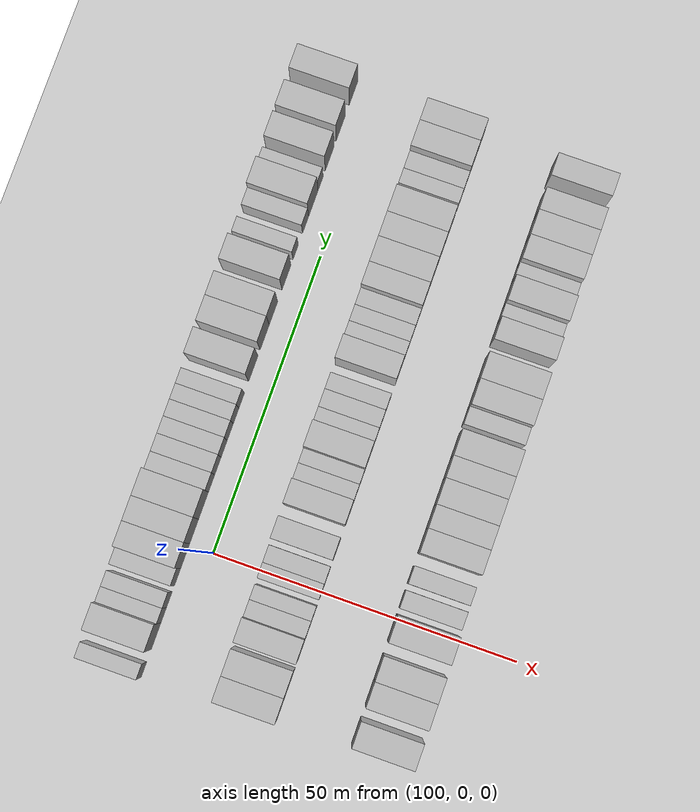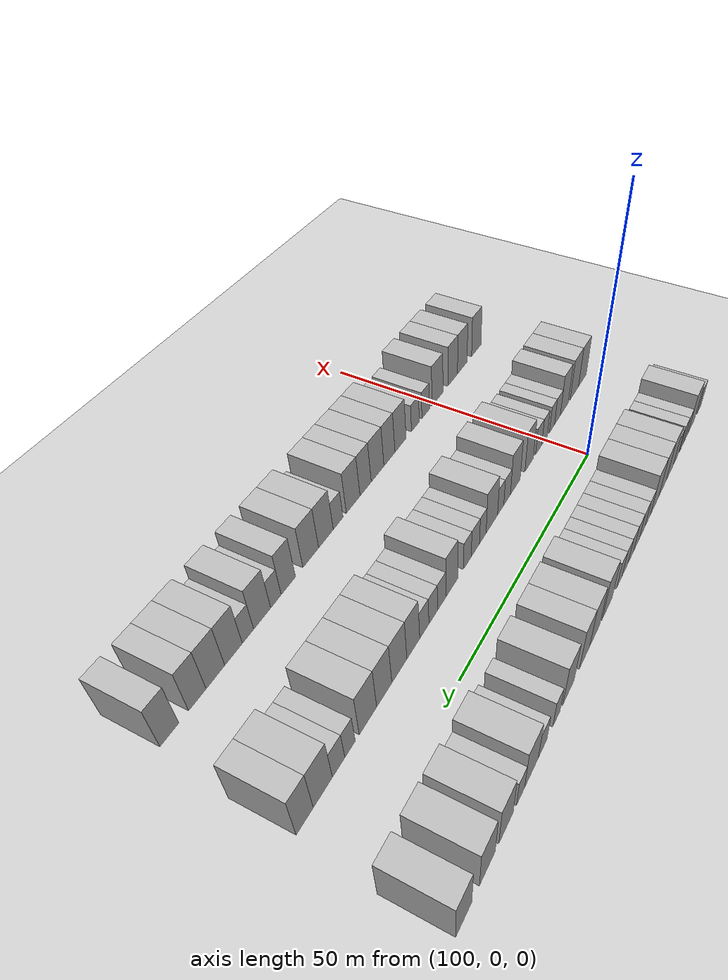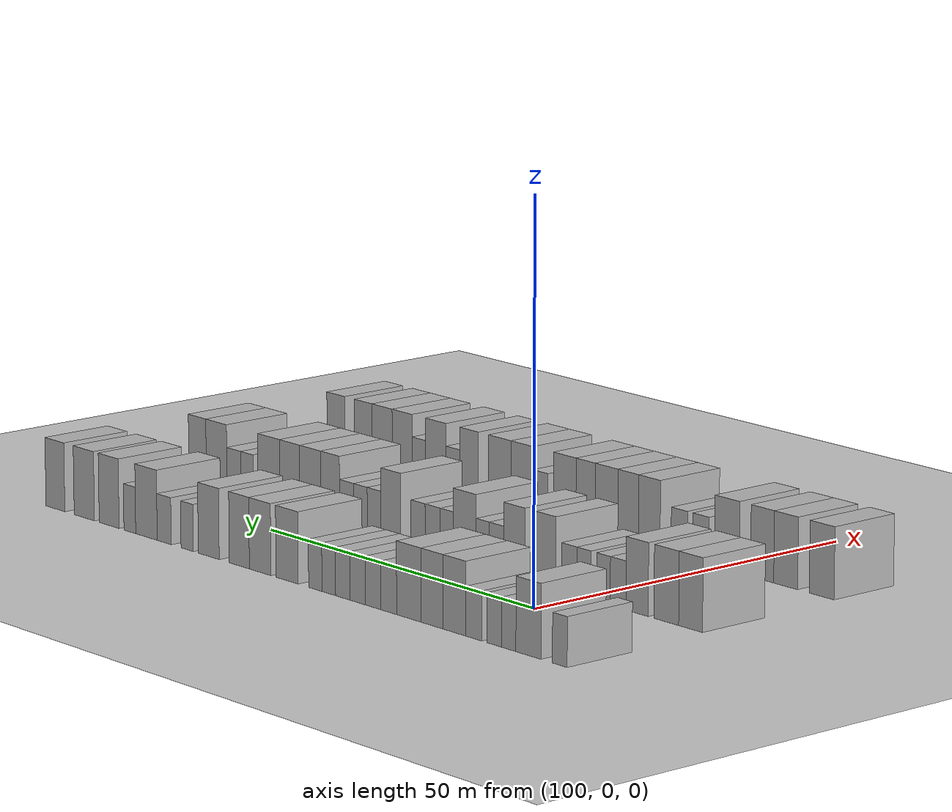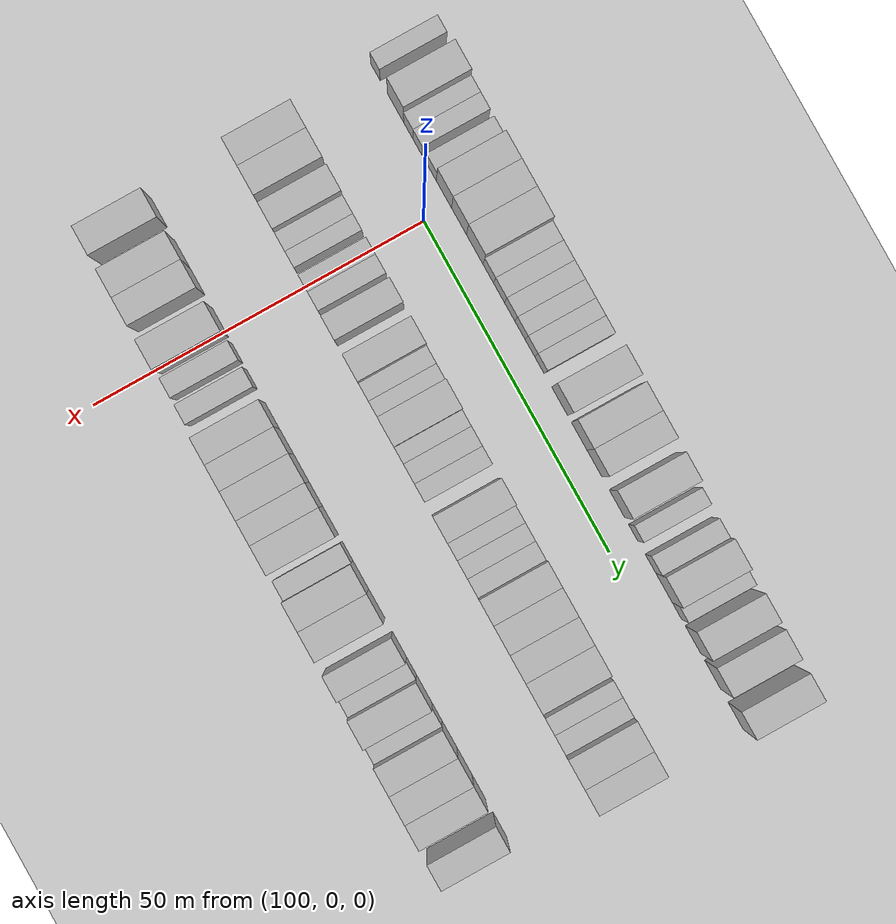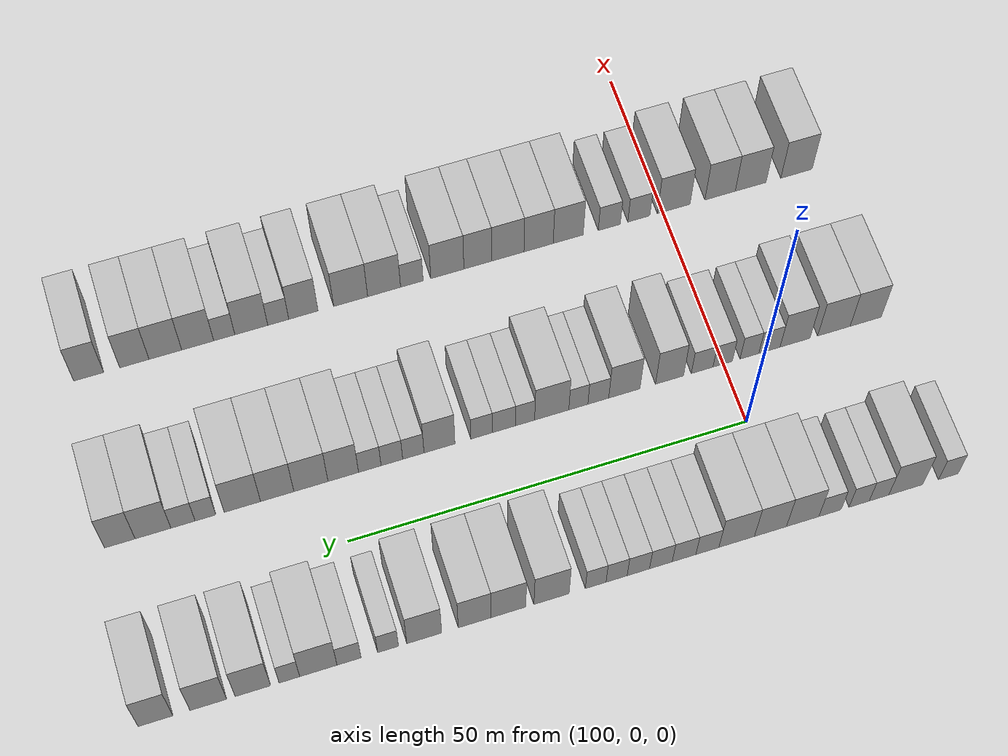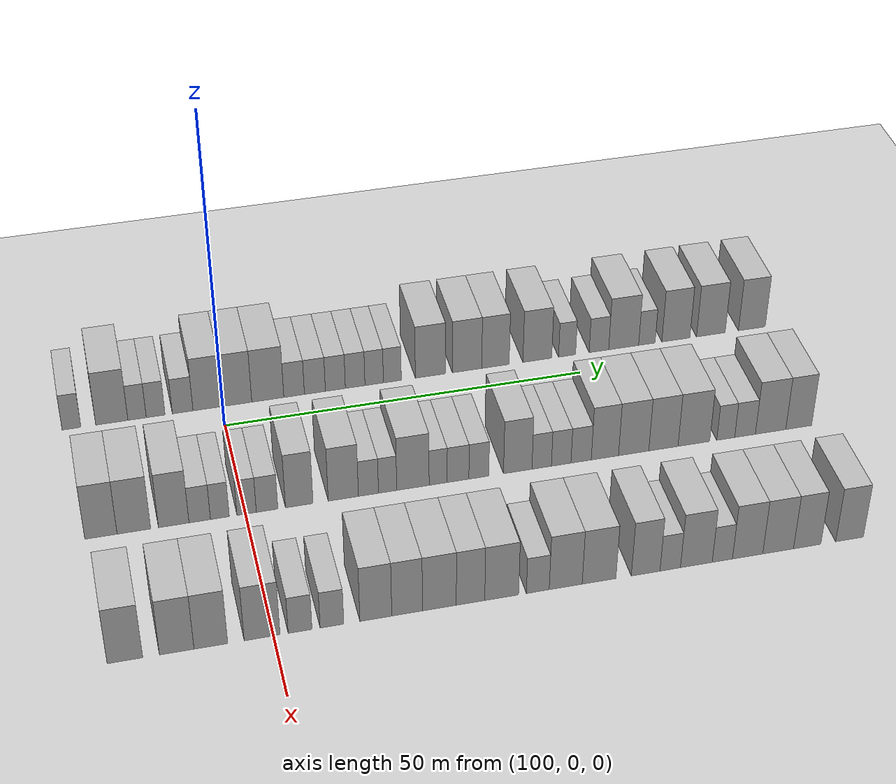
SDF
<sdf version="1.6">
 <world name="default">
  <include>
   <name>ground_plane_2</name>
   <uri>model://HANNAS_ground_plane</uri>
   <pose>100 0 0  0 0 0</pose>
  </include>
  <model name="building_658">
   <static>1</static>
   <pose>91.0000 -20.3699 0 0.000000 0.000000 0.000000</pose>
   <link name="link">
    <pose>0 0 3.00 0 0 0</pose>
    <collision name="collision"><geometry><box><size>10.0000 2.5339 6.0000</size></box></geometry></collision>
    <visual name="visual">
     <cast_shadows>0</cast_shadows>
     <geometry><box><size>10.0000 2.5339 6.0000</size></box></geometry>
     <material>
      <script>
       <uri>model://HANNAS_wall/materials/scripts</uri>
       <uri>model://HANNAS_wall/materials/textures</uri>
       <name>vrc/HANNAS_wall</name>
      </script>
     </material>
    </visual>
   </link>
  </model>
  <model name="building_659">
   <static>1</static>
   <pose>91.0000 -14.9232 0 0.000000 0.000000 0.000000</pose>
   <link name="link">
    <pose>0 0 4.50 0 0 0</pose>
    <collision name="collision"><geometry><box><size>10.0000 4.3595 9.0000</size></box></geometry></collision>
    <visual name="visual">
     <cast_shadows>0</cast_shadows>
     <geometry><box><size>10.0000 4.3595 9.0000</size></box></geometry>
     <material>
      <script>
       <uri>model://HANNAS_wall/materials/scripts</uri>
       <uri>model://HANNAS_wall/materials/textures</uri>
       <name>vrc/HANNAS_wall</name>
      </script>
     </material>
    </visual>
   </link>
  </model>
  <model name="building_660">
   <static>1</static>
   <pose>91.0000 -11.4976 0 0.000000 0.000000 0.000000</pose>
   <link name="link">
    <pose>0 0 3.00 0 0 0</pose>
    <collision name="collision"><geometry><box><size>10.0000 2.4918 6.0000</size></box></geometry></collision>
    <visual name="visual">
     <cast_shadows>0</cast_shadows>
     <geometry><box><size>10.0000 2.4918 6.0000</size></box></geometry>
     <material>
      <script>
       <uri>model://HANNAS_wall/materials/scripts</uri>
       <uri>model://HANNAS_wall/materials/textures</uri>
       <name>vrc/HANNAS_wall</name>
      </script>
     </material>
    </visual>
   </link>
  </model>
  <model name="building_661">
   <static>1</static>
   <pose>91.0000 -8.9685 0 0.000000 0.000000 0.000000</pose>
   <link name="link">
    <pose>0 0 3.00 0 0 0</pose>
    <collision name="collision"><geometry><box><size>10.0000 2.5663 6.0000</size></box></geometry></collision>
    <visual name="visual">
     <cast_shadows>0</cast_shadows>
     <geometry><box><size>10.0000 2.5663 6.0000</size></box></geometry>
     <material>
      <script>
       <uri>model://HANNAS_wall/materials/scripts</uri>
       <uri>model://HANNAS_wall/materials/textures</uri>
       <name>vrc/HANNAS_wall</name>
      </script>
     </material>
    </visual>
   </link>
  </model>
  <model name="building_662">
   <static>1</static>
   <pose>91.0000 -5.2707 0 0.000000 0.000000 0.000000</pose>
   <link name="link">
    <pose>0 0 3.00 0 0 0</pose>
    <collision name="collision"><geometry><box><size>10.0000 2.8292 6.0000</size></box></geometry></collision>
    <visual name="visual">
     <cast_shadows>0</cast_shadows>
     <geometry><box><size>10.0000 2.8292 6.0000</size></box></geometry>
     <material>
      <script>
       <uri>model://HANNAS_wall/materials/scripts</uri>
       <uri>model://HANNAS_wall/materials/textures</uri>
       <name>vrc/HANNAS_wall</name>
      </script>
     </material>
    </visual>
   </link>
  </model>
  <model name="building_663">
   <static>1</static>
   <pose>91.0000 -1.8103 0 0.000000 0.000000 0.000000</pose>
   <link name="link">
    <pose>0 0 4.50 0 0 0</pose>
    <collision name="collision"><geometry><box><size>10.0000 4.0916 9.0000</size></box></geometry></collision>
    <visual name="visual">
     <cast_shadows>0</cast_shadows>
     <geometry><box><size>10.0000 4.0916 9.0000</size></box></geometry>
     <material>
      <script>
       <uri>model://HANNAS_wall/materials/scripts</uri>
       <uri>model://HANNAS_wall/materials/textures</uri>
       <name>vrc/HANNAS_wall</name>
      </script>
     </material>
    </visual>
   </link>
  </model>
  <model name="building_664">
   <static>1</static>
   <pose>91.0000 2.2497 0 0.000000 0.000000 0.000000</pose>
   <link name="link">
    <pose>0 0 4.50 0 0 0</pose>
    <collision name="collision"><geometry><box><size>10.0000 4.0285 9.0000</size></box></geometry></collision>
    <visual name="visual">
     <cast_shadows>0</cast_shadows>
     <geometry><box><size>10.0000 4.0285 9.0000</size></box></geometry>
     <material>
      <script>
       <uri>model://HANNAS_wall/materials/scripts</uri>
       <uri>model://HANNAS_wall/materials/textures</uri>
       <name>vrc/HANNAS_wall</name>
      </script>
     </material>
    </visual>
   </link>
  </model>
  <model name="building_665">
   <static>1</static>
   <pose>91.0000 6.4929 0 0.000000 0.000000 0.000000</pose>
   <link name="link">
    <pose>0 0 4.50 0 0 0</pose>
    <collision name="collision"><geometry><box><size>10.0000 4.4579 9.0000</size></box></geometry></collision>
    <visual name="visual">
     <cast_shadows>0</cast_shadows>
     <geometry><box><size>10.0000 4.4579 9.0000</size></box></geometry>
     <material>
      <script>
       <uri>model://HANNAS_wall/materials/scripts</uri>
       <uri>model://HANNAS_wall/materials/textures</uri>
       <name>vrc/HANNAS_wall</name>
      </script>
     </material>
    </visual>
   </link>
  </model>
  <model name="building_666">
   <static>1</static>
   <pose>91.0000 10.1592 0 0.000000 0.000000 0.000000</pose>
   <link name="link">
    <pose>0 0 3.00 0 0 0</pose>
    <collision name="collision"><geometry><box><size>10.0000 2.8749 6.0000</size></box></geometry></collision>
    <visual name="visual">
     <cast_shadows>0</cast_shadows>
     <geometry><box><size>10.0000 2.8749 6.0000</size></box></geometry>
     <material>
      <script>
       <uri>model://HANNAS_wall/materials/scripts</uri>
       <uri>model://HANNAS_wall/materials/textures</uri>
       <name>vrc/HANNAS_wall</name>
      </script>
     </material>
    </visual>
   </link>
  </model>
  <model name="building_667">
   <static>1</static>
   <pose>91.0000 13.0700 0 0.000000 0.000000 0.000000</pose>
   <link name="link">
    <pose>0 0 3.00 0 0 0</pose>
    <collision name="collision"><geometry><box><size>10.0000 2.9467 6.0000</size></box></geometry></collision>
    <visual name="visual">
     <cast_shadows>0</cast_shadows>
     <geometry><box><size>10.0000 2.9467 6.0000</size></box></geometry>
     <material>
      <script>
       <uri>model://HANNAS_wall/materials/scripts</uri>
       <uri>model://HANNAS_wall/materials/textures</uri>
       <name>vrc/HANNAS_wall</name>
      </script>
     </material>
    </visual>
   </link>
  </model>
  <model name="building_668">
   <static>1</static>
   <pose>91.0000 15.9498 0 0.000000 0.000000 0.000000</pose>
   <link name="link">
    <pose>0 0 3.00 0 0 0</pose>
    <collision name="collision"><geometry><box><size>10.0000 2.8129 6.0000</size></box></geometry></collision>
    <visual name="visual">
     <cast_shadows>0</cast_shadows>
     <geometry><box><size>10.0000 2.8129 6.0000</size></box></geometry>
     <material>
      <script>
       <uri>model://HANNAS_wall/materials/scripts</uri>
       <uri>model://HANNAS_wall/materials/textures</uri>
       <name>vrc/HANNAS_wall</name>
      </script>
     </material>
    </visual>
   </link>
  </model>
  <model name="building_669">
   <static>1</static>
   <pose>91.0000 18.7405 0 0.000000 0.000000 0.000000</pose>
   <link name="link">
    <pose>0 0 3.00 0 0 0</pose>
    <collision name="collision"><geometry><box><size>10.0000 2.7685 6.0000</size></box></geometry></collision>
    <visual name="visual">
     <cast_shadows>0</cast_shadows>
     <geometry><box><size>10.0000 2.7685 6.0000</size></box></geometry>
     <material>
      <script>
       <uri>model://HANNAS_wall/materials/scripts</uri>
       <uri>model://HANNAS_wall/materials/textures</uri>
       <name>vrc/HANNAS_wall</name>
      </script>
     </material>
    </visual>
   </link>
  </model>
  <model name="building_670">
   <static>1</static>
   <pose>91.0000 21.4288 0 0.000000 0.000000 0.000000</pose>
   <link name="link">
    <pose>0 0 3.00 0 0 0</pose>
    <collision name="collision"><geometry><box><size>10.0000 2.6081 6.0000</size></box></geometry></collision>
    <visual name="visual">
     <cast_shadows>0</cast_shadows>
     <geometry><box><size>10.0000 2.6081 6.0000</size></box></geometry>
     <material>
      <script>
       <uri>model://HANNAS_wall/materials/scripts</uri>
       <uri>model://HANNAS_wall/materials/textures</uri>
       <name>vrc/HANNAS_wall</name>
      </script>
     </material>
    </visual>
   </link>
  </model>
  <model name="building_671">
   <static>1</static>
   <pose>91.0000 24.0065 0 0.000000 0.000000 0.000000</pose>
   <link name="link">
    <pose>0 0 3.00 0 0 0</pose>
    <collision name="collision"><geometry><box><size>10.0000 2.5472 6.0000</size></box></geometry></collision>
    <visual name="visual">
     <cast_shadows>0</cast_shadows>
     <geometry><box><size>10.0000 2.5472 6.0000</size></box></geometry>
     <material>
      <script>
       <uri>model://HANNAS_wall/materials/scripts</uri>
       <uri>model://HANNAS_wall/materials/textures</uri>
       <name>vrc/HANNAS_wall</name>
      </script>
     </material>
    </visual>
   </link>
  </model>
  <model name="building_672">
   <static>1</static>
   <pose>91.0000 29.4325 0 0.000000 0.000000 0.000000</pose>
   <link name="link">
    <pose>0 0 4.50 0 0 0</pose>
    <collision name="collision"><geometry><box><size>10.0000 4.3049 9.0000</size></box></geometry></collision>
    <visual name="visual">
     <cast_shadows>0</cast_shadows>
     <geometry><box><size>10.0000 4.3049 9.0000</size></box></geometry>
     <material>
      <script>
       <uri>model://HANNAS_wall/materials/scripts</uri>
       <uri>model://HANNAS_wall/materials/textures</uri>
       <name>vrc/HANNAS_wall</name>
      </script>
     </material>
    </visual>
   </link>
  </model>
  <model name="building_673">
   <static>1</static>
   <pose>91.0000 34.6981 0 0.000000 0.000000 0.000000</pose>
   <link name="link">
    <pose>0 0 4.50 0 0 0</pose>
    <collision name="collision"><geometry><box><size>10.0000 4.2263 9.0000</size></box></geometry></collision>
    <visual name="visual">
     <cast_shadows>0</cast_shadows>
     <geometry><box><size>10.0000 4.2263 9.0000</size></box></geometry>
     <material>
      <script>
       <uri>model://HANNAS_wall/materials/scripts</uri>
       <uri>model://HANNAS_wall/materials/textures</uri>
       <name>vrc/HANNAS_wall</name>
      </script>
     </material>
    </visual>
   </link>
  </model>
  <model name="building_674">
   <static>1</static>
   <pose>91.0000 38.7994 0 0.000000 0.000000 0.000000</pose>
   <link name="link">
    <pose>0 0 4.50 0 0 0</pose>
    <collision name="collision"><geometry><box><size>10.0000 3.9763 9.0000</size></box></geometry></collision>
    <visual name="visual">
     <cast_shadows>0</cast_shadows>
     <geometry><box><size>10.0000 3.9763 9.0000</size></box></geometry>
     <material>
      <script>
       <uri>model://HANNAS_wall/materials/scripts</uri>
       <uri>model://HANNAS_wall/materials/textures</uri>
       <name>vrc/HANNAS_wall</name>
      </script>
     </material>
    </visual>
   </link>
  </model>
  <model name="building_675">
   <static>1</static>
   <pose>91.0000 44.8889 0 0.000000 0.000000 0.000000</pose>
   <link name="link">
    <pose>0 0 4.50 0 0 0</pose>
    <collision name="collision"><geometry><box><size>10.0000 4.2027 9.0000</size></box></geometry></collision>
    <visual name="visual">
     <cast_shadows>0</cast_shadows>
     <geometry><box><size>10.0000 4.2027 9.0000</size></box></geometry>
     <material>
      <script>
       <uri>model://HANNAS_wall/materials/scripts</uri>
       <uri>model://HANNAS_wall/materials/textures</uri>
       <name>vrc/HANNAS_wall</name>
      </script>
     </material>
    </visual>
   </link>
  </model>
  <model name="building_676">
   <static>1</static>
   <pose>91.0000 49.2400 0 0.000000 0.000000 0.000000</pose>
   <link name="link">
    <pose>0 0 3.00 0 0 0</pose>
    <collision name="collision"><geometry><box><size>10.0000 2.4996 6.0000</size></box></geometry></collision>
    <visual name="visual">
     <cast_shadows>0</cast_shadows>
     <geometry><box><size>10.0000 2.4996 6.0000</size></box></geometry>
     <material>
      <script>
       <uri>model://HANNAS_wall/materials/scripts</uri>
       <uri>model://HANNAS_wall/materials/textures</uri>
       <name>vrc/HANNAS_wall</name>
      </script>
     </material>
    </visual>
   </link>
  </model>
  <model name="building_677">
   <static>1</static>
   <pose>91.0000 53.9259 0 0.000000 0.000000 0.000000</pose>
   <link name="link">
    <pose>0 0 3.00 0 0 0</pose>
    <collision name="collision"><geometry><box><size>10.0000 2.8724 6.0000</size></box></geometry></collision>
    <visual name="visual">
     <cast_shadows>0</cast_shadows>
     <geometry><box><size>10.0000 2.8724 6.0000</size></box></geometry>
     <material>
      <script>
       <uri>model://HANNAS_wall/materials/scripts</uri>
       <uri>model://HANNAS_wall/materials/textures</uri>
       <name>vrc/HANNAS_wall</name>
      </script>
     </material>
    </visual>
   </link>
  </model>
  <model name="building_678">
   <static>1</static>
   <pose>91.0000 57.5828 0 0.000000 0.000000 0.000000</pose>
   <link name="link">
    <pose>0 0 4.50 0 0 0</pose>
    <collision name="collision"><geometry><box><size>10.0000 4.4414 9.0000</size></box></geometry></collision>
    <visual name="visual">
     <cast_shadows>0</cast_shadows>
     <geometry><box><size>10.0000 4.4414 9.0000</size></box></geometry>
     <material>
      <script>
       <uri>model://HANNAS_wall/materials/scripts</uri>
       <uri>model://HANNAS_wall/materials/textures</uri>
       <name>vrc/HANNAS_wall</name>
      </script>
     </material>
    </visual>
   </link>
  </model>
  <model name="building_679">
   <static>1</static>
   <pose>91.0000 61.0299 0 0.000000 0.000000 0.000000</pose>
   <link name="link">
    <pose>0 0 3.00 0 0 0</pose>
    <collision name="collision"><geometry><box><size>10.0000 2.4528 6.0000</size></box></geometry></collision>
    <visual name="visual">
     <cast_shadows>0</cast_shadows>
     <geometry><box><size>10.0000 2.4528 6.0000</size></box></geometry>
     <material>
      <script>
       <uri>model://HANNAS_wall/materials/scripts</uri>
       <uri>model://HANNAS_wall/materials/textures</uri>
       <name>vrc/HANNAS_wall</name>
      </script>
     </material>
    </visual>
   </link>
  </model>
  <model name="building_680">
   <static>1</static>
   <pose>91.0000 65.3519 0 0.000000 0.000000 0.000000</pose>
   <link name="link">
    <pose>0 0 4.50 0 0 0</pose>
    <collision name="collision"><geometry><box><size>10.0000 4.1912 9.0000</size></box></geometry></collision>
    <visual name="visual">
     <cast_shadows>0</cast_shadows>
     <geometry><box><size>10.0000 4.1912 9.0000</size></box></geometry>
     <material>
      <script>
       <uri>model://HANNAS_wall/materials/scripts</uri>
       <uri>model://HANNAS_wall/materials/textures</uri>
       <name>vrc/HANNAS_wall</name>
      </script>
     </material>
    </visual>
   </link>
  </model>
  <model name="building_681">
   <static>1</static>
   <pose>91.0000 70.6037 0 0.000000 0.000000 0.000000</pose>
   <link name="link">
    <pose>0 0 4.50 0 0 0</pose>
    <collision name="collision"><geometry><box><size>10.0000 4.3123 9.0000</size></box></geometry></collision>
    <visual name="visual">
     <cast_shadows>0</cast_shadows>
     <geometry><box><size>10.0000 4.3123 9.0000</size></box></geometry>
     <material>
      <script>
       <uri>model://HANNAS_wall/materials/scripts</uri>
       <uri>model://HANNAS_wall/materials/textures</uri>
       <name>vrc/HANNAS_wall</name>
      </script>
     </material>
    </visual>
   </link>
  </model>
  <model name="building_682">
   <static>1</static>
   <pose>91.0000 76.7898 0 0.000000 0.000000 0.000000</pose>
   <link name="link">
    <pose>0 0 4.50 0 0 0</pose>
    <collision name="collision"><geometry><box><size>10.0000 4.0599 9.0000</size></box></geometry></collision>
    <visual name="visual">
     <cast_shadows>0</cast_shadows>
     <geometry><box><size>10.0000 4.0599 9.0000</size></box></geometry>
     <material>
      <script>
       <uri>model://HANNAS_wall/materials/scripts</uri>
       <uri>model://HANNAS_wall/materials/textures</uri>
       <name>vrc/HANNAS_wall</name>
      </script>
     </material>
    </visual>
   </link>
  </model>
  <model name="building_831">
   <static>1</static>
   <pose>113.0000 -18.5796 0 0.000000 0.000000 0.000000</pose>
   <link name="link">
    <pose>0 0 4.50 0 0 0</pose>
    <collision name="collision"><geometry><box><size>10.0000 4.1065 9.0000</size></box></geometry></collision>
    <visual name="visual">
     <cast_shadows>0</cast_shadows>
     <geometry><box><size>10.0000 4.1065 9.0000</size></box></geometry>
     <material>
      <script>
       <uri>model://HANNAS_wall/materials/scripts</uri>
       <uri>model://HANNAS_wall/materials/textures</uri>
       <name>vrc/HANNAS_wall</name>
      </script>
     </material>
    </visual>
   </link>
  </model>
  <model name="building_832">
   <static>1</static>
   <pose>113.0000 -14.3864 0 0.000000 0.000000 0.000000</pose>
   <link name="link">
    <pose>0 0 4.50 0 0 0</pose>
    <collision name="collision"><geometry><box><size>10.0000 4.2799 9.0000</size></box></geometry></collision>
    <visual name="visual">
     <cast_shadows>0</cast_shadows>
     <geometry><box><size>10.0000 4.2799 9.0000</size></box></geometry>
     <material>
      <script>
       <uri>model://HANNAS_wall/materials/scripts</uri>
       <uri>model://HANNAS_wall/materials/textures</uri>
       <name>vrc/HANNAS_wall</name>
      </script>
     </material>
    </visual>
   </link>
  </model>
  <model name="building_833">
   <static>1</static>
   <pose>113.0000 -9.2876 0 0.000000 0.000000 0.000000</pose>
   <link name="link">
    <pose>0 0 4.50 0 0 0</pose>
    <collision name="collision"><geometry><box><size>10.0000 3.9177 9.0000</size></box></geometry></collision>
    <visual name="visual">
     <cast_shadows>0</cast_shadows>
     <geometry><box><size>10.0000 3.9177 9.0000</size></box></geometry>
     <material>
      <script>
       <uri>model://HANNAS_wall/materials/scripts</uri>
       <uri>model://HANNAS_wall/materials/textures</uri>
       <name>vrc/HANNAS_wall</name>
      </script>
     </material>
    </visual>
   </link>
  </model>
  <model name="building_834">
   <static>1</static>
   <pose>113.0000 -5.9424 0 0.000000 0.000000 0.000000</pose>
   <link name="link">
    <pose>0 0 3.00 0 0 0</pose>
    <collision name="collision"><geometry><box><size>10.0000 2.7726 6.0000</size></box></geometry></collision>
    <visual name="visual">
     <cast_shadows>0</cast_shadows>
     <geometry><box><size>10.0000 2.7726 6.0000</size></box></geometry>
     <material>
      <script>
       <uri>model://HANNAS_wall/materials/scripts</uri>
       <uri>model://HANNAS_wall/materials/textures</uri>
       <name>vrc/HANNAS_wall</name>
      </script>
     </material>
    </visual>
   </link>
  </model>
  <model name="building_835">
   <static>1</static>
   <pose>113.0000 -3.3367 0 0.000000 0.000000 0.000000</pose>
   <link name="link">
    <pose>0 0 3.00 0 0 0</pose>
    <collision name="collision"><geometry><box><size>10.0000 2.4389 6.0000</size></box></geometry></collision>
    <visual name="visual">
     <cast_shadows>0</cast_shadows>
     <geometry><box><size>10.0000 2.4389 6.0000</size></box></geometry>
     <material>
      <script>
       <uri>model://HANNAS_wall/materials/scripts</uri>
       <uri>model://HANNAS_wall/materials/textures</uri>
       <name>vrc/HANNAS_wall</name>
      </script>
     </material>
    </visual>
   </link>
  </model>
  <model name="building_836">
   <static>1</static>
   <pose>113.0000 0.1438 0 0.000000 0.000000 0.000000</pose>
   <link name="link">
    <pose>0 0 3.00 0 0 0</pose>
    <collision name="collision"><geometry><box><size>10.0000 2.5219 6.0000</size></box></geometry></collision>
    <visual name="visual">
     <cast_shadows>0</cast_shadows>
     <geometry><box><size>10.0000 2.5219 6.0000</size></box></geometry>
     <material>
      <script>
       <uri>model://HANNAS_wall/materials/scripts</uri>
       <uri>model://HANNAS_wall/materials/textures</uri>
       <name>vrc/HANNAS_wall</name>
      </script>
     </material>
    </visual>
   </link>
  </model>
  <model name="building_837">
   <static>1</static>
   <pose>113.0000 2.8094 0 0.000000 0.000000 0.000000</pose>
   <link name="link">
    <pose>0 0 3.00 0 0 0</pose>
    <collision name="collision"><geometry><box><size>10.0000 2.8094 6.0000</size></box></geometry></collision>
    <visual name="visual">
     <cast_shadows>0</cast_shadows>
     <geometry><box><size>10.0000 2.8094 6.0000</size></box></geometry>
     <material>
      <script>
       <uri>model://HANNAS_wall/materials/scripts</uri>
       <uri>model://HANNAS_wall/materials/textures</uri>
       <name>vrc/HANNAS_wall</name>
      </script>
     </material>
    </visual>
   </link>
  </model>
  <model name="building_838">
   <static>1</static>
   <pose>113.0000 7.0246 0 0.000000 0.000000 0.000000</pose>
   <link name="link">
    <pose>0 0 4.50 0 0 0</pose>
    <collision name="collision"><geometry><box><size>10.0000 3.6210 9.0000</size></box></geometry></collision>
    <visual name="visual">
     <cast_shadows>0</cast_shadows>
     <geometry><box><size>10.0000 3.6210 9.0000</size></box></geometry>
     <material>
      <script>
       <uri>model://HANNAS_wall/materials/scripts</uri>
       <uri>model://HANNAS_wall/materials/textures</uri>
       <name>vrc/HANNAS_wall</name>
      </script>
     </material>
    </visual>
   </link>
  </model>
  <model name="building_839">
   <static>1</static>
   <pose>113.0000 12.8337 0 0.000000 0.000000 0.000000</pose>
   <link name="link">
    <pose>0 0 4.50 0 0 0</pose>
    <collision name="collision"><geometry><box><size>10.0000 3.9974 9.0000</size></box></geometry></collision>
    <visual name="visual">
     <cast_shadows>0</cast_shadows>
     <geometry><box><size>10.0000 3.9974 9.0000</size></box></geometry>
     <material>
      <script>
       <uri>model://HANNAS_wall/materials/scripts</uri>
       <uri>model://HANNAS_wall/materials/textures</uri>
       <name>vrc/HANNAS_wall</name>
      </script>
     </material>
    </visual>
   </link>
  </model>
  <model name="building_840">
   <static>1</static>
   <pose>113.0000 16.1624 0 0.000000 0.000000 0.000000</pose>
   <link name="link">
    <pose>0 0 3.00 0 0 0</pose>
    <collision name="collision"><geometry><box><size>10.0000 2.6598 6.0000</size></box></geometry></collision>
    <visual name="visual">
     <cast_shadows>0</cast_shadows>
     <geometry><box><size>10.0000 2.6598 6.0000</size></box></geometry>
     <material>
      <script>
       <uri>model://HANNAS_wall/materials/scripts</uri>
       <uri>model://HANNAS_wall/materials/textures</uri>
       <name>vrc/HANNAS_wall</name>
      </script>
     </material>
    </visual>
   </link>
  </model>
  <model name="building_841">
   <static>1</static>
   <pose>113.0000 18.7087 0 0.000000 0.000000 0.000000</pose>
   <link name="link">
    <pose>0 0 3.00 0 0 0</pose>
    <collision name="collision"><geometry><box><size>10.0000 2.4329 6.0000</size></box></geometry></collision>
    <visual name="visual">
     <cast_shadows>0</cast_shadows>
     <geometry><box><size>10.0000 2.4329 6.0000</size></box></geometry>
     <material>
      <script>
       <uri>model://HANNAS_wall/materials/scripts</uri>
       <uri>model://HANNAS_wall/materials/textures</uri>
       <name>vrc/HANNAS_wall</name>
      </script>
     </material>
    </visual>
   </link>
  </model>
  <model name="building_842">
   <static>1</static>
   <pose>113.0000 22.0988 0 0.000000 0.000000 0.000000</pose>
   <link name="link">
    <pose>0 0 4.50 0 0 0</pose>
    <collision name="collision"><geometry><box><size>10.0000 4.3474 9.0000</size></box></geometry></collision>
    <visual name="visual">
     <cast_shadows>0</cast_shadows>
     <geometry><box><size>10.0000 4.3474 9.0000</size></box></geometry>
     <material>
      <script>
       <uri>model://HANNAS_wall/materials/scripts</uri>
       <uri>model://HANNAS_wall/materials/textures</uri>
       <name>vrc/HANNAS_wall</name>
      </script>
     </material>
    </visual>
   </link>
  </model>
  <model name="building_843">
   <static>1</static>
   <pose>113.0000 25.4875 0 0.000000 0.000000 0.000000</pose>
   <link name="link">
    <pose>0 0 3.00 0 0 0</pose>
    <collision name="collision"><geometry><box><size>10.0000 2.4300 6.0000</size></box></geometry></collision>
    <visual name="visual">
     <cast_shadows>0</cast_shadows>
     <geometry><box><size>10.0000 2.4300 6.0000</size></box></geometry>
     <material>
      <script>
       <uri>model://HANNAS_wall/materials/scripts</uri>
       <uri>model://HANNAS_wall/materials/textures</uri>
       <name>vrc/HANNAS_wall</name>
      </script>
     </material>
    </visual>
   </link>
  </model>
  <model name="building_844">
   <static>1</static>
   <pose>113.0000 28.1633 0 0.000000 0.000000 0.000000</pose>
   <link name="link">
    <pose>0 0 3.00 0 0 0</pose>
    <collision name="collision"><geometry><box><size>10.0000 2.9216 6.0000</size></box></geometry></collision>
    <visual name="visual">
     <cast_shadows>0</cast_shadows>
     <geometry><box><size>10.0000 2.9216 6.0000</size></box></geometry>
     <material>
      <script>
       <uri>model://HANNAS_wall/materials/scripts</uri>
       <uri>model://HANNAS_wall/materials/textures</uri>
       <name>vrc/HANNAS_wall</name>
      </script>
     </material>
    </visual>
   </link>
  </model>
  <model name="building_845">
   <static>1</static>
   <pose>113.0000 30.9744 0 0.000000 0.000000 0.000000</pose>
   <link name="link">
    <pose>0 0 3.00 0 0 0</pose>
    <collision name="collision"><geometry><box><size>10.0000 2.7004 6.0000</size></box></geometry></collision>
    <visual name="visual">
     <cast_shadows>0</cast_shadows>
     <geometry><box><size>10.0000 2.7004 6.0000</size></box></geometry>
     <material>
      <script>
       <uri>model://HANNAS_wall/materials/scripts</uri>
       <uri>model://HANNAS_wall/materials/textures</uri>
       <name>vrc/HANNAS_wall</name>
      </script>
     </material>
    </visual>
   </link>
  </model>
  <model name="building_846">
   <static>1</static>
   <pose>113.0000 36.2657 0 0.000000 0.000000 0.000000</pose>
   <link name="link">
    <pose>0 0 4.50 0 0 0</pose>
    <collision name="collision"><geometry><box><size>10.0000 3.8824 9.0000</size></box></geometry></collision>
    <visual name="visual">
     <cast_shadows>0</cast_shadows>
     <geometry><box><size>10.0000 3.8824 9.0000</size></box></geometry>
     <material>
      <script>
       <uri>model://HANNAS_wall/materials/scripts</uri>
       <uri>model://HANNAS_wall/materials/textures</uri>
       <name>vrc/HANNAS_wall</name>
      </script>
     </material>
    </visual>
   </link>
  </model>
  <model name="building_847">
   <static>1</static>
   <pose>113.0000 39.5394 0 0.000000 0.000000 0.000000</pose>
   <link name="link">
    <pose>0 0 3.00 0 0 0</pose>
    <collision name="collision"><geometry><box><size>10.0000 2.6649 6.0000</size></box></geometry></collision>
    <visual name="visual">
     <cast_shadows>0</cast_shadows>
     <geometry><box><size>10.0000 2.6649 6.0000</size></box></geometry>
     <material>
      <script>
       <uri>model://HANNAS_wall/materials/scripts</uri>
       <uri>model://HANNAS_wall/materials/textures</uri>
       <name>vrc/HANNAS_wall</name>
      </script>
     </material>
    </visual>
   </link>
  </model>
  <model name="building_848">
   <static>1</static>
   <pose>113.0000 42.2161 0 0.000000 0.000000 0.000000</pose>
   <link name="link">
    <pose>0 0 3.00 0 0 0</pose>
    <collision name="collision"><geometry><box><size>10.0000 2.6884 6.0000</size></box></geometry></collision>
    <visual name="visual">
     <cast_shadows>0</cast_shadows>
     <geometry><box><size>10.0000 2.6884 6.0000</size></box></geometry>
     <material>
      <script>
       <uri>model://HANNAS_wall/materials/scripts</uri>
       <uri>model://HANNAS_wall/materials/textures</uri>
       <name>vrc/HANNAS_wall</name>
      </script>
     </material>
    </visual>
   </link>
  </model>
  <model name="building_849">
   <static>1</static>
   <pose>113.0000 44.9607 0 0.000000 0.000000 0.000000</pose>
   <link name="link">
    <pose>0 0 3.00 0 0 0</pose>
    <collision name="collision"><geometry><box><size>10.0000 2.8009 6.0000</size></box></geometry></collision>
    <visual name="visual">
     <cast_shadows>0</cast_shadows>
     <geometry><box><size>10.0000 2.8009 6.0000</size></box></geometry>
     <material>
      <script>
       <uri>model://HANNAS_wall/materials/scripts</uri>
       <uri>model://HANNAS_wall/materials/textures</uri>
       <name>vrc/HANNAS_wall</name>
      </script>
     </material>
    </visual>
   </link>
  </model>
  <model name="building_850">
   <static>1</static>
   <pose>113.0000 48.2514 0 0.000000 0.000000 0.000000</pose>
   <link name="link">
    <pose>0 0 4.50 0 0 0</pose>
    <collision name="collision"><geometry><box><size>10.0000 3.7805 9.0000</size></box></geometry></collision>
    <visual name="visual">
     <cast_shadows>0</cast_shadows>
     <geometry><box><size>10.0000 3.7805 9.0000</size></box></geometry>
     <material>
      <script>
       <uri>model://HANNAS_wall/materials/scripts</uri>
       <uri>model://HANNAS_wall/materials/textures</uri>
       <name>vrc/HANNAS_wall</name>
      </script>
     </material>
    </visual>
   </link>
  </model>
  <model name="building_851">
   <static>1</static>
   <pose>113.0000 52.2507 0 0.000000 0.000000 0.000000</pose>
   <link name="link">
    <pose>0 0 4.50 0 0 0</pose>
    <collision name="collision"><geometry><box><size>10.0000 4.2181 9.0000</size></box></geometry></collision>
    <visual name="visual">
     <cast_shadows>0</cast_shadows>
     <geometry><box><size>10.0000 4.2181 9.0000</size></box></geometry>
     <material>
      <script>
       <uri>model://HANNAS_wall/materials/scripts</uri>
       <uri>model://HANNAS_wall/materials/textures</uri>
       <name>vrc/HANNAS_wall</name>
      </script>
     </material>
    </visual>
   </link>
  </model>
  <model name="building_852">
   <static>1</static>
   <pose>113.0000 56.4066 0 0.000000 0.000000 0.000000</pose>
   <link name="link">
    <pose>0 0 4.50 0 0 0</pose>
    <collision name="collision"><geometry><box><size>10.0000 4.0938 9.0000</size></box></geometry></collision>
    <visual name="visual">
     <cast_shadows>0</cast_shadows>
     <geometry><box><size>10.0000 4.0938 9.0000</size></box></geometry>
     <material>
      <script>
       <uri>model://HANNAS_wall/materials/scripts</uri>
       <uri>model://HANNAS_wall/materials/textures</uri>
       <name>vrc/HANNAS_wall</name>
      </script>
     </material>
    </visual>
   </link>
  </model>
  <model name="building_853">
   <static>1</static>
   <pose>113.0000 60.6880 0 0.000000 0.000000 0.000000</pose>
   <link name="link">
    <pose>0 0 4.50 0 0 0</pose>
    <collision name="collision"><geometry><box><size>10.0000 4.4689 9.0000</size></box></geometry></collision>
    <visual name="visual">
     <cast_shadows>0</cast_shadows>
     <geometry><box><size>10.0000 4.4689 9.0000</size></box></geometry>
     <material>
      <script>
       <uri>model://HANNAS_wall/materials/scripts</uri>
       <uri>model://HANNAS_wall/materials/textures</uri>
       <name>vrc/HANNAS_wall</name>
      </script>
     </material>
    </visual>
   </link>
  </model>
  <model name="building_854">
   <static>1</static>
   <pose>113.0000 65.1886 0 0.000000 0.000000 0.000000</pose>
   <link name="link">
    <pose>0 0 3.00 0 0 0</pose>
    <collision name="collision"><geometry><box><size>10.0000 2.5323 6.0000</size></box></geometry></collision>
    <visual name="visual">
     <cast_shadows>0</cast_shadows>
     <geometry><box><size>10.0000 2.5323 6.0000</size></box></geometry>
     <material>
      <script>
       <uri>model://HANNAS_wall/materials/scripts</uri>
       <uri>model://HANNAS_wall/materials/textures</uri>
       <name>vrc/HANNAS_wall</name>
      </script>
     </material>
    </visual>
   </link>
  </model>
  <model name="building_855">
   <static>1</static>
   <pose>113.0000 67.9240 0 0.000000 0.000000 0.000000</pose>
   <link name="link">
    <pose>0 0 3.00 0 0 0</pose>
    <collision name="collision"><geometry><box><size>10.0000 2.9385 6.0000</size></box></geometry></collision>
    <visual name="visual">
     <cast_shadows>0</cast_shadows>
     <geometry><box><size>10.0000 2.9385 6.0000</size></box></geometry>
     <material>
      <script>
       <uri>model://HANNAS_wall/materials/scripts</uri>
       <uri>model://HANNAS_wall/materials/textures</uri>
       <name>vrc/HANNAS_wall</name>
      </script>
     </material>
    </visual>
   </link>
  </model>
  <model name="building_856">
   <static>1</static>
   <pose>113.0000 71.5654 0 0.000000 0.000000 0.000000</pose>
   <link name="link">
    <pose>0 0 4.50 0 0 0</pose>
    <collision name="collision"><geometry><box><size>10.0000 4.3444 9.0000</size></box></geometry></collision>
    <visual name="visual">
     <cast_shadows>0</cast_shadows>
     <geometry><box><size>10.0000 4.3444 9.0000</size></box></geometry>
     <material>
      <script>
       <uri>model://HANNAS_wall/materials/scripts</uri>
       <uri>model://HANNAS_wall/materials/textures</uri>
       <name>vrc/HANNAS_wall</name>
      </script>
     </material>
    </visual>
   </link>
  </model>
  <model name="building_857">
   <static>1</static>
   <pose>113.0000 75.5908 0 0.000000 0.000000 0.000000</pose>
   <link name="link">
    <pose>0 0 4.50 0 0 0</pose>
    <collision name="collision"><geometry><box><size>10.0000 3.7065 9.0000</size></box></geometry></collision>
    <visual name="visual">
     <cast_shadows>0</cast_shadows>
     <geometry><box><size>10.0000 3.7065 9.0000</size></box></geometry>
     <material>
      <script>
       <uri>model://HANNAS_wall/materials/scripts</uri>
       <uri>model://HANNAS_wall/materials/textures</uri>
       <name>vrc/HANNAS_wall</name>
      </script>
     </material>
    </visual>
   </link>
  </model>
  <model name="building_1027">
   <static>1</static>
   <pose>135.0000 -17.9206 0 0.000000 0.000000 0.000000</pose>
   <link name="link">
    <pose>0 0 4.50 0 0 0</pose>
    <collision name="collision"><geometry><box><size>10.0000 4.2409 9.0000</size></box></geometry></collision>
    <visual name="visual">
     <cast_shadows>0</cast_shadows>
     <geometry><box><size>10.0000 4.2409 9.0000</size></box></geometry>
     <material>
      <script>
       <uri>model://HANNAS_wall/materials/scripts</uri>
       <uri>model://HANNAS_wall/materials/textures</uri>
       <name>vrc/HANNAS_wall</name>
      </script>
     </material>
    </visual>
   </link>
  </model>
  <model name="building_1028">
   <static>1</static>
   <pose>135.0000 -11.7221 0 0.000000 0.000000 0.000000</pose>
   <link name="link">
    <pose>0 0 4.50 0 0 0</pose>
    <collision name="collision"><geometry><box><size>10.0000 4.1562 9.0000</size></box></geometry></collision>
    <visual name="visual">
     <cast_shadows>0</cast_shadows>
     <geometry><box><size>10.0000 4.1562 9.0000</size></box></geometry>
     <material>
      <script>
       <uri>model://HANNAS_wall/materials/scripts</uri>
       <uri>model://HANNAS_wall/materials/textures</uri>
       <name>vrc/HANNAS_wall</name>
      </script>
     </material>
    </visual>
   </link>
  </model>
  <model name="building_1029">
   <static>1</static>
   <pose>135.0000 -7.6072 0 0.000000 0.000000 0.000000</pose>
   <link name="link">
    <pose>0 0 4.50 0 0 0</pose>
    <collision name="collision"><geometry><box><size>10.0000 4.0735 9.0000</size></box></geometry></collision>
    <visual name="visual">
     <cast_shadows>0</cast_shadows>
     <geometry><box><size>10.0000 4.0735 9.0000</size></box></geometry>
     <material>
      <script>
       <uri>model://HANNAS_wall/materials/scripts</uri>
       <uri>model://HANNAS_wall/materials/textures</uri>
       <name>vrc/HANNAS_wall</name>
      </script>
     </material>
    </visual>
   </link>
  </model>
  <model name="building_1030">
   <static>1</static>
   <pose>135.0000 -1.3852 0 0.000000 0.000000 0.000000</pose>
   <link name="link">
    <pose>0 0 4.50 0 0 0</pose>
    <collision name="collision"><geometry><box><size>10.0000 4.3705 9.0000</size></box></geometry></collision>
    <visual name="visual">
     <cast_shadows>0</cast_shadows>
     <geometry><box><size>10.0000 4.3705 9.0000</size></box></geometry>
     <material>
      <script>
       <uri>model://HANNAS_wall/materials/scripts</uri>
       <uri>model://HANNAS_wall/materials/textures</uri>
       <name>vrc/HANNAS_wall</name>
      </script>
     </material>
    </visual>
   </link>
  </model>
  <model name="building_1031">
   <static>1</static>
   <pose>135.0000 3.2630 0 0.000000 0.000000 0.000000</pose>
   <link name="link">
    <pose>0 0 3.00 0 0 0</pose>
    <collision name="collision"><geometry><box><size>10.0000 2.9260 6.0000</size></box></geometry></collision>
    <visual name="visual">
     <cast_shadows>0</cast_shadows>
     <geometry><box><size>10.0000 2.9260 6.0000</size></box></geometry>
     <material>
      <script>
       <uri>model://HANNAS_wall/materials/scripts</uri>
       <uri>model://HANNAS_wall/materials/textures</uri>
       <name>vrc/HANNAS_wall</name>
      </script>
     </material>
    </visual>
   </link>
  </model>
  <model name="building_1032">
   <static>1</static>
   <pose>135.0000 7.1863 0 0.000000 0.000000 0.000000</pose>
   <link name="link">
    <pose>0 0 3.00 0 0 0</pose>
    <collision name="collision"><geometry><box><size>10.0000 2.9205 6.0000</size></box></geometry></collision>
    <visual name="visual">
     <cast_shadows>0</cast_shadows>
     <geometry><box><size>10.0000 2.9205 6.0000</size></box></geometry>
     <material>
      <script>
       <uri>model://HANNAS_wall/materials/scripts</uri>
       <uri>model://HANNAS_wall/materials/textures</uri>
       <name>vrc/HANNAS_wall</name>
      </script>
     </material>
    </visual>
   </link>
  </model>
  <model name="building_1033">
   <static>1</static>
   <pose>135.0000 12.6271 0 0.000000 0.000000 0.000000</pose>
   <link name="link">
    <pose>0 0 4.50 0 0 0</pose>
    <collision name="collision"><geometry><box><size>10.0000 3.9612 9.0000</size></box></geometry></collision>
    <visual name="visual">
     <cast_shadows>0</cast_shadows>
     <geometry><box><size>10.0000 3.9612 9.0000</size></box></geometry>
     <material>
      <script>
       <uri>model://HANNAS_wall/materials/scripts</uri>
       <uri>model://HANNAS_wall/materials/textures</uri>
       <name>vrc/HANNAS_wall</name>
      </script>
     </material>
    </visual>
   </link>
  </model>
  <model name="building_1034">
   <static>1</static>
   <pose>135.0000 16.5270 0 0.000000 0.000000 0.000000</pose>
   <link name="link">
    <pose>0 0 4.50 0 0 0</pose>
    <collision name="collision"><geometry><box><size>10.0000 3.8386 9.0000</size></box></geometry></collision>
    <visual name="visual">
     <cast_shadows>0</cast_shadows>
     <geometry><box><size>10.0000 3.8386 9.0000</size></box></geometry>
     <material>
      <script>
       <uri>model://HANNAS_wall/materials/scripts</uri>
       <uri>model://HANNAS_wall/materials/textures</uri>
       <name>vrc/HANNAS_wall</name>
      </script>
     </material>
    </visual>
   </link>
  </model>
  <model name="building_1035">
   <static>1</static>
   <pose>135.0000 20.5699 0 0.000000 0.000000 0.000000</pose>
   <link name="link">
    <pose>0 0 4.50 0 0 0</pose>
    <collision name="collision"><geometry><box><size>10.0000 4.2472 9.0000</size></box></geometry></collision>
    <visual name="visual">
     <cast_shadows>0</cast_shadows>
     <geometry><box><size>10.0000 4.2472 9.0000</size></box></geometry>
     <material>
      <script>
       <uri>model://HANNAS_wall/materials/scripts</uri>
       <uri>model://HANNAS_wall/materials/textures</uri>
       <name>vrc/HANNAS_wall</name>
      </script>
     </material>
    </visual>
   </link>
  </model>
  <model name="building_1036">
   <static>1</static>
   <pose>135.0000 24.4957 0 0.000000 0.000000 0.000000</pose>
   <link name="link">
    <pose>0 0 4.50 0 0 0</pose>
    <collision name="collision"><geometry><box><size>10.0000 3.6045 9.0000</size></box></geometry></collision>
    <visual name="visual">
     <cast_shadows>0</cast_shadows>
     <geometry><box><size>10.0000 3.6045 9.0000</size></box></geometry>
     <material>
      <script>
       <uri>model://HANNAS_wall/materials/scripts</uri>
       <uri>model://HANNAS_wall/materials/textures</uri>
       <name>vrc/HANNAS_wall</name>
      </script>
     </material>
    </visual>
   </link>
  </model>
  <model name="building_1037">
   <static>1</static>
   <pose>135.0000 28.4485 0 0.000000 0.000000 0.000000</pose>
   <link name="link">
    <pose>0 0 4.50 0 0 0</pose>
    <collision name="collision"><geometry><box><size>10.0000 4.3010 9.0000</size></box></geometry></collision>
    <visual name="visual">
     <cast_shadows>0</cast_shadows>
     <geometry><box><size>10.0000 4.3010 9.0000</size></box></geometry>
     <material>
      <script>
       <uri>model://HANNAS_wall/materials/scripts</uri>
       <uri>model://HANNAS_wall/materials/textures</uri>
       <name>vrc/HANNAS_wall</name>
      </script>
     </material>
    </visual>
   </link>
  </model>
  <model name="building_1038">
   <static>1</static>
   <pose>135.0000 33.0578 0 0.000000 0.000000 0.000000</pose>
   <link name="link">
    <pose>0 0 3.00 0 0 0</pose>
    <collision name="collision"><geometry><box><size>10.0000 2.9177 6.0000</size></box></geometry></collision>
    <visual name="visual">
     <cast_shadows>0</cast_shadows>
     <geometry><box><size>10.0000 2.9177 6.0000</size></box></geometry>
     <material>
      <script>
       <uri>model://HANNAS_wall/materials/scripts</uri>
       <uri>model://HANNAS_wall/materials/textures</uri>
       <name>vrc/HANNAS_wall</name>
      </script>
     </material>
    </visual>
   </link>
  </model>
  <model name="building_1039">
   <static>1</static>
   <pose>135.0000 36.6381 0 0.000000 0.000000 0.000000</pose>
   <link name="link">
    <pose>0 0 4.50 0 0 0</pose>
    <collision name="collision"><geometry><box><size>10.0000 4.2428 9.0000</size></box></geometry></collision>
    <visual name="visual">
     <cast_shadows>0</cast_shadows>
     <geometry><box><size>10.0000 4.2428 9.0000</size></box></geometry>
     <material>
      <script>
       <uri>model://HANNAS_wall/materials/scripts</uri>
       <uri>model://HANNAS_wall/materials/textures</uri>
       <name>vrc/HANNAS_wall</name>
      </script>
     </material>
    </visual>
   </link>
  </model>
  <model name="building_1040">
   <static>1</static>
   <pose>135.0000 40.9458 0 0.000000 0.000000 0.000000</pose>
   <link name="link">
    <pose>0 0 4.50 0 0 0</pose>
    <collision name="collision"><geometry><box><size>10.0000 4.3726 9.0000</size></box></geometry></collision>
    <visual name="visual">
     <cast_shadows>0</cast_shadows>
     <geometry><box><size>10.0000 4.3726 9.0000</size></box></geometry>
     <material>
      <script>
       <uri>model://HANNAS_wall/materials/scripts</uri>
       <uri>model://HANNAS_wall/materials/textures</uri>
       <name>vrc/HANNAS_wall</name>
      </script>
     </material>
    </visual>
   </link>
  </model>
  <model name="building_1041">
   <static>1</static>
   <pose>135.0000 47.0021 0 0.000000 0.000000 0.000000</pose>
   <link name="link">
    <pose>0 0 4.50 0 0 0</pose>
    <collision name="collision"><geometry><box><size>10.0000 3.7400 9.0000</size></box></geometry></collision>
    <visual name="visual">
     <cast_shadows>0</cast_shadows>
     <geometry><box><size>10.0000 3.7400 9.0000</size></box></geometry>
     <material>
      <script>
       <uri>model://HANNAS_wall/materials/scripts</uri>
       <uri>model://HANNAS_wall/materials/textures</uri>
       <name>vrc/HANNAS_wall</name>
      </script>
     </material>
    </visual>
   </link>
  </model>
  <model name="building_1042">
   <static>1</static>
   <pose>135.0000 50.2117 0 0.000000 0.000000 0.000000</pose>
   <link name="link">
    <pose>0 0 3.00 0 0 0</pose>
    <collision name="collision"><geometry><box><size>10.0000 2.6793 6.0000</size></box></geometry></collision>
    <visual name="visual">
     <cast_shadows>0</cast_shadows>
     <geometry><box><size>10.0000 2.6793 6.0000</size></box></geometry>
     <material>
      <script>
       <uri>model://HANNAS_wall/materials/scripts</uri>
       <uri>model://HANNAS_wall/materials/textures</uri>
       <name>vrc/HANNAS_wall</name>
      </script>
     </material>
    </visual>
   </link>
  </model>
  <model name="building_1043">
   <static>1</static>
   <pose>135.0000 53.6424 0 0.000000 0.000000 0.000000</pose>
   <link name="link">
    <pose>0 0 4.50 0 0 0</pose>
    <collision name="collision"><geometry><box><size>10.0000 4.1820 9.0000</size></box></geometry></collision>
    <visual name="visual">
     <cast_shadows>0</cast_shadows>
     <geometry><box><size>10.0000 4.1820 9.0000</size></box></geometry>
     <material>
      <script>
       <uri>model://HANNAS_wall/materials/scripts</uri>
       <uri>model://HANNAS_wall/materials/textures</uri>
       <name>vrc/HANNAS_wall</name>
      </script>
     </material>
    </visual>
   </link>
  </model>
  <model name="building_1044">
   <static>1</static>
   <pose>135.0000 57.0729 0 0.000000 0.000000 0.000000</pose>
   <link name="link">
    <pose>0 0 3.00 0 0 0</pose>
    <collision name="collision"><geometry><box><size>10.0000 2.6790 6.0000</size></box></geometry></collision>
    <visual name="visual">
     <cast_shadows>0</cast_shadows>
     <geometry><box><size>10.0000 2.6790 6.0000</size></box></geometry>
     <material>
      <script>
       <uri>model://HANNAS_wall/materials/scripts</uri>
       <uri>model://HANNAS_wall/materials/textures</uri>
       <name>vrc/HANNAS_wall</name>
      </script>
     </material>
    </visual>
   </link>
  </model>
  <model name="building_1045">
   <static>1</static>
   <pose>135.0000 60.4291 0 0.000000 0.000000 0.000000</pose>
   <link name="link">
    <pose>0 0 4.50 0 0 0</pose>
    <collision name="collision"><geometry><box><size>10.0000 4.0334 9.0000</size></box></geometry></collision>
    <visual name="visual">
     <cast_shadows>0</cast_shadows>
     <geometry><box><size>10.0000 4.0334 9.0000</size></box></geometry>
     <material>
      <script>
       <uri>model://HANNAS_wall/materials/scripts</uri>
       <uri>model://HANNAS_wall/materials/textures</uri>
       <name>vrc/HANNAS_wall</name>
      </script>
     </material>
    </visual>
   </link>
  </model>
  <model name="building_1046">
   <static>1</static>
   <pose>135.0000 64.5008 0 0.000000 0.000000 0.000000</pose>
   <link name="link">
    <pose>0 0 4.50 0 0 0</pose>
    <collision name="collision"><geometry><box><size>10.0000 4.1099 9.0000</size></box></geometry></collision>
    <visual name="visual">
     <cast_shadows>0</cast_shadows>
     <geometry><box><size>10.0000 4.1099 9.0000</size></box></geometry>
     <material>
      <script>
       <uri>model://HANNAS_wall/materials/scripts</uri>
       <uri>model://HANNAS_wall/materials/textures</uri>
       <name>vrc/HANNAS_wall</name>
      </script>
     </material>
    </visual>
   </link>
  </model>
  <model name="building_1047">
   <static>1</static>
   <pose>135.0000 68.3948 0 0.000000 0.000000 0.000000</pose>
   <link name="link">
    <pose>0 0 4.50 0 0 0</pose>
    <collision name="collision"><geometry><box><size>10.0000 3.6783 9.0000</size></box></geometry></collision>
    <visual name="visual">
     <cast_shadows>0</cast_shadows>
     <geometry><box><size>10.0000 3.6783 9.0000</size></box></geometry>
     <material>
      <script>
       <uri>model://HANNAS_wall/materials/scripts</uri>
       <uri>model://HANNAS_wall/materials/textures</uri>
       <name>vrc/HANNAS_wall</name>
      </script>
     </material>
    </visual>
   </link>
  </model>
  <model name="building_1048">
   <static>1</static>
   <pose>135.0000 74.1022 0 0.000000 0.000000 0.000000</pose>
   <link name="link">
    <pose>0 0 4.50 0 0 0</pose>
    <collision name="collision"><geometry><box><size>10.0000 3.7363 9.0000</size></box></geometry></collision>
    <visual name="visual">
     <cast_shadows>0</cast_shadows>
     <geometry><box><size>10.0000 3.7363 9.0000</size></box></geometry>
     <material>
      <script>
       <uri>model://HANNAS_wall/materials/scripts</uri>
       <uri>model://HANNAS_wall/materials/textures</uri>
       <name>vrc/HANNAS_wall</name>
      </script>
     </material>
    </visual>
   </link>
  </model>
 </world>
</sdf>
